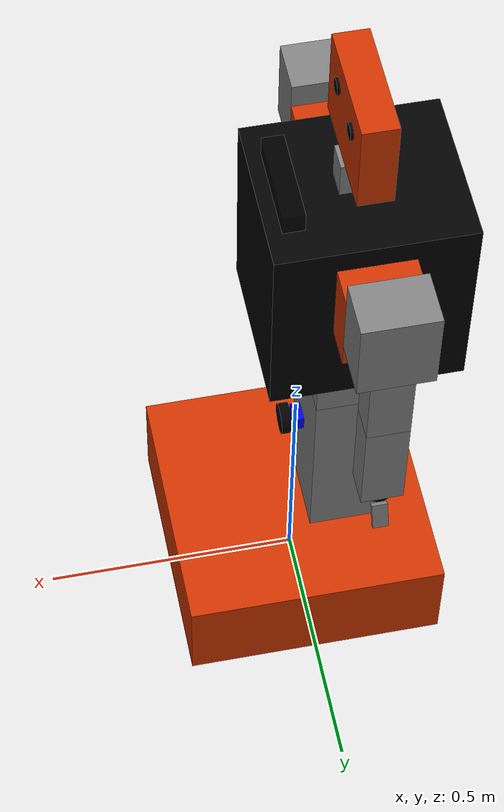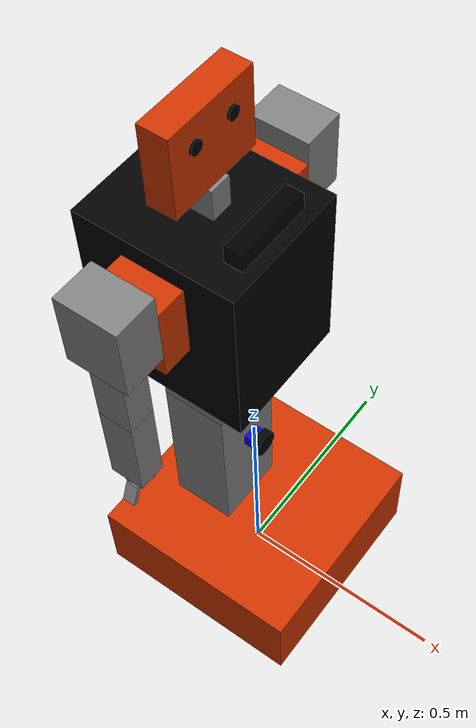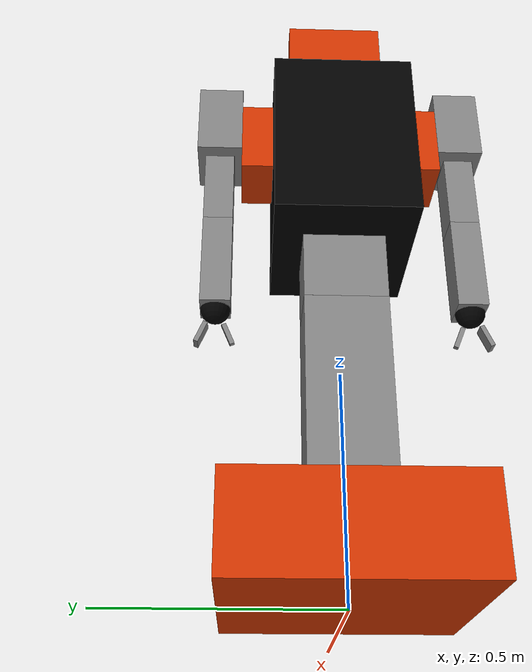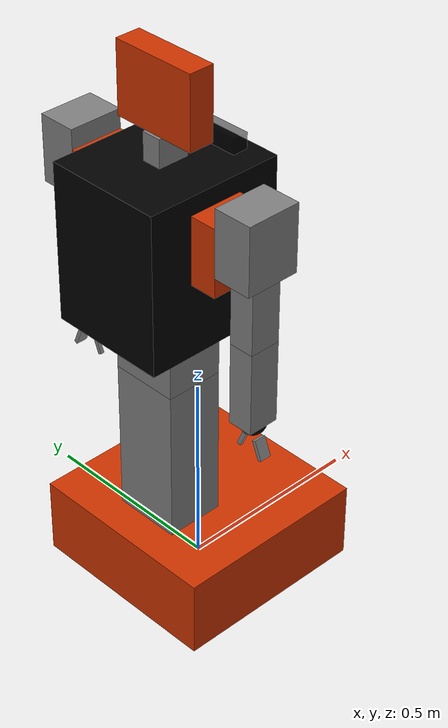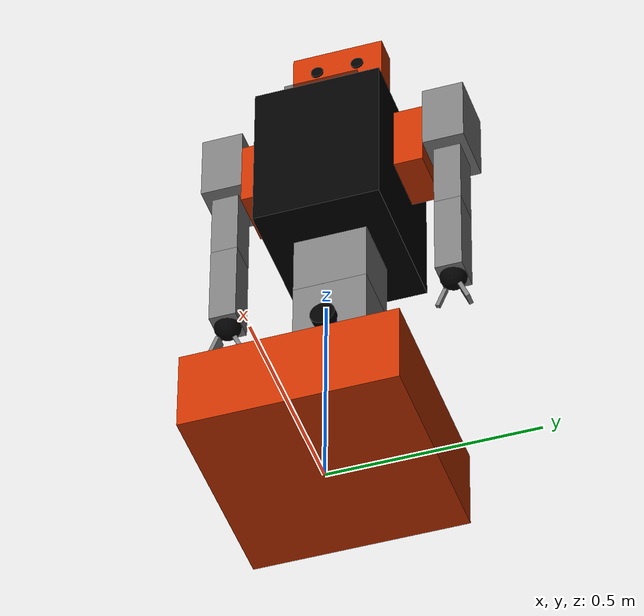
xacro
<?xml version="1.0" ?>
<!-- |    This document was autogenerated by xacro from /home/jacob/Documents/TangerineModel.urdf.xacro | -->
<!-- |    EDITING THIS FILE BY HAND IS NOT RECOMMENDED                                 | -->
<robot name="tangerige" xmlns:xacro="http://www.ros.org/wiki/xacro">
  <!-- .......................MACROS.................... -->
  <!-- ....................... END MACROS.................... -->
  <!-- ................BASE................. -->
  <link name="root_frame_dummy">
    <visual>
      <geometry>
	<box size="0 0 0"/>
      </geometry>
    </visual>
    <inertial>
      <mass value=".001"/>
      <inertia ixx="1.0" ixy="0.0" ixz="0.0" iyy="1.0" iyz="0.0" izz="1.0"/>
    </inertial>
    <origin xyz="0 0 0"/>
  </link>
  <joint name="root_frame_to_base_torso" type="planar">
    <parent link="root_frame_dummy"/>
    <child link="base_link_robot"/>
    <origin xyz="0 0 0.1"/>
  </joint>
  <link name="base_link_robot">
    <visual>
      <geometry>
        <box size="0.51 0.51 0.2"/>
      </geometry>
      <material name="orange">
        <color rgba=".8 .2 0 1"/>
      </material>
    </visual>
    <collision>
      <geometry>
        <cylinder length="0.2" radius="0.31"/>
      </geometry>
    </collision>
    <inertial>
      <mass value="10"/>
      <inertia ixx="1.0" ixy="0.0" ixz="0.0" iyy="1.0" iyz="0.0" izz="1.0"/>
    </inertial>
    <origin xyz="0 0 0"/>
    <dynamics damping="0.7" friction="1000.0"/>
  </link>
  <gazebo reference="base_link">
    <material>Gazebo/Red</material>
  </gazebo>
  <joint name="base_link_to_torso" type="fixed">
    <axis xyz="1 0 0"/>
    <limit effort="1000.0" lower="0" upper="0" velocity="0"/>
    <parent link="base_link_robot"/>
    <child link="base_torso"/>
    <origin xyz="-0.093 0 0.3"/>
  </joint>
  <link name="base_torso">
    <visual>
      <geometry>
        <box size="0.176 0.15 0.4"/>
      </geometry>
      <material name="grey">
        <color rgba="0.5 0.5 0.5 1"/>
      </material>
      <origin rpy="0 0 1.57075"/>
    </visual>
    <collision>
      <geometry>
        <cylinder length="0.55" radius="0.13"/>
      </geometry>
    </collision>
    <inertial>
      <mass value="6"/>
      <inertia ixx="1.0" ixy="0.0" ixz="0.0" iyy="1.0" iyz="0.0" izz="1.0"/>
    </inertial>
    <dynamics damping="0.7" friction="1000.0"/>
  </link>
  <gazebo reference="base_torso">
    <material>Gazebo/Red</material>
  </gazebo>
  <link name="upper_base_torso">
    <visual>
      <geometry>
        <box size="0.176 0.15 0.15"/>
      </geometry>
      <material name="grey"/>
    </visual>
    <collision>
      <geometry>
        <cylinder length="0.55" radius="0.13"/>
      </geometry>
    </collision>
    <inertial>
      <mass value="6"/>
      <inertia ixx="1.0" ixy="0.0" ixz="0.0" iyy="1.0" iyz="0.0" izz="1.0"/>
    </inertial>
    <dynamics damping="0.7" friction="1000.0"/>
  </link>
  <gazebo reference="upper_base_torso">
    <material>Gazebo/Gray</material>
  </gazebo>
  <joint name="torso_to_upper_base" type="revolute">
    <axis xyz="1 0 0"/>
    <limit effort="1000.0" lower="0" upper="0" velocity="0"/>
    <parent link="base_torso"/>
    <child link="upper_base_torso"/>
    <origin rpy="0 0 -1.57075" xyz="0 0 0.275"/>
  </joint>
  <link name="superior_link">
    <visual>
      <geometry>
        <box size="0.305 0.360 0.4"/>
      </geometry>
      <material name="black">
        <color rgba="0 0 0 1"/>
      </material>
    </visual>
    <collision>
      <geometry>
        <cylinder length="0.4" radius="0.22"/>
      </geometry>
    </collision>
    <inertial>
      <mass value="8"/>
      <inertia ixx="1.0" ixy="0.0" ixz="0.0" iyy="1.0" iyz="0.0" izz="1.0"/>
    </inertial>
    <dynamics damping="0.7" friction="1000.0"/>
  </link>
  <gazebo reference="superior_link">
    <material>Gazebo/Black</material>
  </gazebo>
  <joint name="upper_base_to_superior_link" type="revolute">
    <axis xyz="1 0 0"/>
    <limit effort="1000.0" lower="0" upper="0" velocity="0"/>
    <parent link="upper_base_torso"/>
    <child link="superior_link"/>
    <origin xyz="0 0 0.275"/>
  </joint>
  <link name="skeleton/openni_depth_frame">
    <visual>
      <geometry>
        <box size="0.04 0.18 0.04"/>
      </geometry>
      <material name="grey">
        <color rgba="0 0 0 0.5"/>
      </material>
    </visual>
    <collision>
      <geometry>
        <cylinder length="0.01" radius="0.01"/>
      </geometry>
    </collision>
    <inertial>
      <mass value="0.01"/>
      <inertia ixx="1.0" ixy="0.0" ixz="0.0" iyy="1.0" iyz="0.0" izz="1.0"/>
    </inertial>
    <dynamics damping="0.7" friction="1000.0"/>
  </link>
  <joint name="superior_link_to_openni_depth_frame" type="revolute">
    <axis xyz="1 0 0"/>
    <limit effort="1000.0" lower="0" upper="0" velocity="0"/>
    <parent link="superior_link"/>
    <child link="skeleton/openni_depth_frame"/>
    <origin rpy="0 0 1.57075" xyz="0 0.1325 0.22"/>
  </joint>
  <!-- ................END BASE................. -->
  <!-- ................HEAD................. -->
  <link name="neck_link">
    <visual>
      <geometry>
        <box size="0.05 0.08 0.07"/>
      </geometry>
      <material name="grey"/>
    </visual>
    <collision>
      <geometry>
        <cylinder length="0.07" radius="0.036"/>
      </geometry>
    </collision>
    <inertial>
      <mass value="0.5"/>
      <inertia ixx="1.0" ixy="0.0" ixz="0.0" iyy="1.0" iyz="0.0" izz="1.0"/>
    </inertial>
    <dynamics damping="0.7" friction="1000.0"/>
  </link>
  <gazebo reference="neck_link">
    <material>Gazebo/Red</material>
  </gazebo>
  <joint name="superior_to_neck_link" type="revolute">
    <axis xyz="1 0 0"/>
    <limit effort="1000.0" lower="0" upper="0" velocity="0"/>
    <parent link="superior_link"/>
    <child link="neck_link"/>
    <origin xyz="0 0 0.235"/>
  </joint>
  <link name="neck_z_revolute">
    <collision>
      <geometry>
        <cylinder length="0.01" radius="0.01"/>
      </geometry>
    </collision>
    <inertial>
      <mass value="0.01"/>
      <inertia ixx="1.0" ixy="0.0" ixz="0.0" iyy="1.0" iyz="0.0" izz="1.0"/>
    </inertial>
    <dynamics damping="0.7" friction="1000.0"/>
  </link>
  <joint name="neck_to_z_revolute" type="revolute">
    <axis xyz="0 0 1"/>
    <limit effort="1000.0" lower="-0.7853" upper="0.7853" velocity="5"/>
    <parent link="neck_link"/>
    <child link="neck_z_revolute"/>
  </joint>
  <link name="neck_x_revolute">
    <collision>
      <geometry>
        <cylinder length="0.01" radius="0.01"/>
      </geometry>
    </collision>
    <inertial>
      <mass value="0.01"/>
      <inertia ixx="1.0" ixy="0.0" ixz="0.0" iyy="1.0" iyz="0.0" izz="1.0"/>
    </inertial>
    <dynamics damping="0.7" friction="1000.0"/>
  </link>
  <joint name="z_revolute_to_x_revolute" type="revolute">
    <axis xyz="1 0 0"/>
    <limit effort="1000.0" lower="-0.3926" upper="0.3926" velocity="5"/>
    <parent link="neck_z_revolute"/>
    <child link="neck_x_revolute"/>
  </joint>
  <link name="head">
    <visual>
      <geometry>
        <box size="0.222 0.065 0.18"/>
      </geometry>
      <material name="orange"/>
    </visual>
    <collision>
      <geometry>
        <cylinder length="0.18" radius="0.16"/>
      </geometry>
    </collision>
    <inertial>
      <mass value="4"/>
      <inertia ixx="1.0" ixy="0.0" ixz="0.0" iyy="1.0" iyz="0.0" izz="1.0"/>
    </inertial>
    <dynamics damping="0.7" friction="1000.0"/>
  </link>
  <gazebo reference="head">
    <material>Gazebo/Red</material>
  </gazebo>
  <joint name="revolute_head" type="revolute">
    <axis xyz="1 0 0"/>
    <limit effort="1000.0" lower="0" upper="0" velocity="0"/>
    <parent link="neck_x_revolute"/>
    <child link="head"/>
    <origin xyz="0 0 0.125"/>
  </joint>
  <link name="right_eye">
    <visual>
      <geometry>
        <cylinder length="0.015" radius="0.015"/>
      </geometry>
      <material name="black"/>
      <origin rpy="-1.57075 0 0"/>
    </visual>
    <collision>
      <geometry>
        <cylinder length="0.03" radius="0.01"/>
      </geometry>
    </collision>
    <inertial>
      <mass value="0.2"/>
      <inertia ixx="1.0" ixy="0.0" ixz="0.0" iyy="1.0" iyz="0.0" izz="1.0"/>
    </inertial>
    <dynamics damping="0.7" friction="1000.0"/>
  </link>
  <joint name="right_eye_to_head" type="revolute">
    <axis xyz="1 0 0"/>
    <limit effort="1000.0" lower="0" upper="0" velocity="0"/>
    <parent link="head"/>
    <child link="right_eye"/>
    <origin xyz="0.05 0.03 0.03"/>
  </joint>
  <link name="left_eye">
    <visual>
      <geometry>
        <cylinder length="0.015" radius="0.015"/>
      </geometry>
      <material name="black"/>
      <origin rpy="-1.57075 0 0"/>
    </visual>
    <collision>
      <geometry>
        <cylinder length="0.03" radius="0.01"/>
      </geometry>
    </collision>
    <inertial>
      <mass value="0.2"/>
      <inertia ixx="1.0" ixy="0.0" ixz="0.0" iyy="1.0" iyz="0.0" izz="1.0"/>
    </inertial>
    <dynamics damping="0.7" friction="1000.0"/>
  </link>
  <joint name="left_eye_to_head" type="revolute">
    <axis xyz="1 0 0"/>
    <limit effort="1000.0" lower="0" upper="0" velocity="0"/>
    <parent link="head"/>
    <child link="left_eye"/>
    <origin xyz="-0.05 0.03 0.03"/>
  </joint>
  <!-- ................END HEAD................. -->
  <!-- ................RIGHT ARM................. -->
  <link name="right_shoulder_link">
    <visual>
      <geometry>
        <box size="0.07 0.14 0.17"/>
      </geometry>
      <material name="orange"/>
    </visual>
    <collision>
      <geometry>
        <cylinder length="0.23" radius="0.13"/>
      </geometry>
    </collision>
    <inertial>
      <mass value="2"/>
      <inertia ixx="1.0" ixy="0.0" ixz="0.0" iyy="1.0" iyz="0.0" izz="1.0"/>
    </inertial>
    <dynamics damping="0.7" friction="1000.0"/>
  </link>
  <gazebo reference="right_shoulder_link">
    <material>Gazebo/Gray</material>
  </gazebo>
  <joint name="superior_link_to_right_shoulder_link" type="revolute">
    <axis xyz="1 0 0"/>
    <limit effort="1000.0" lower="-0.785375" upper="1.57075" velocity="5"/>
    <parent link="superior_link"/>
    <child link="right_shoulder_link"/>
    <origin xyz="0.1875 0 0.07"/>
  </joint>
  <link name="right_shoulder">
    <visual>
      <geometry>
        <box size="0.10 0.14 0.17"/>
      </geometry>
      <material name="grey"/>
    </visual>
    <collision>
      <geometry>
        <cylinder length="0.23" radius="0.13"/>
      </geometry>
    </collision>
    <inertial>
      <mass value="2"/>
      <inertia ixx="1.0" ixy="0.0" ixz="0.0" iyy="1.0" iyz="0.0" izz="1.0"/>
    </inertial>
    <dynamics damping="0.7" friction="1000.0"/>
  </link>
  <gazebo reference="right_shoulder">
    <material>Gazebo/Gray</material>
  </gazebo>
  <joint name="right_shoulder_x_revolute" type="revolute">
    <axis xyz="1 0 0"/>
    <limit effort="1000.0" lower="-0.785375" upper="1.57075" velocity="5"/>
    <parent link="superior_link"/>
    <child link="right_shoulder"/>
    <origin xyz="0.2725 0 0.12"/>
  </joint>
  <link name="upper_right_arm_z_revolute">
    <collision>
      <geometry>
        <cylinder length="0.01" radius="0.01"/>
      </geometry>
    </collision>
    <inertial>
      <mass value="0.01"/>
      <inertia ixx="1.0" ixy="0.0" ixz="0.0" iyy="1.0" iyz="0.0" izz="1.0"/>
    </inertial>
    <dynamics damping="0.7" friction="1000.0"/>
  </link>
  <joint name="upper_right_arm_z_revolute" type="revolute">
    <axis xyz="0 0 1"/>
    <limit effort="1000.0" lower="-0.7" upper="0.7" velocity="5"/>
    <parent link="right_shoulder"/>
    <child link="upper_right_arm_z_revolute"/>
    <origin xyz="0 0 0"/>
  </joint>
  <link name="upper_right_arm_y_revolute">
    <collision>
      <geometry>
        <cylinder length="0.01" radius="0.01"/>
      </geometry>
    </collision>
    <inertial>
      <mass value="0.01"/>
      <inertia ixx="1.0" ixy="0.0" ixz="0.0" iyy="1.0" iyz="0.0" izz="1.0"/>
    </inertial>
    <dynamics damping="0.7" friction="1000.0"/>
  </link>
  <joint name="upper_right_arm_y_revolute" type="revolute">
    <axis xyz="0 1 0"/>
    <limit effort="1000.0" lower="-.4" upper="0" velocity="5"/>
    <parent link="upper_right_arm_z_revolute"/>
    <child link="upper_right_arm_y_revolute"/>
    <origin xyz="0 0 0"/>
  </joint>
  <link name="upper_right_arm">
    <visual>
      <geometry>
        <box size="0.065 0.08 0.17"/>
      </geometry>
      <material name="grey"/>
    </visual>
    <collision>
      <geometry>
        <cylinder length="0.17" radius="0.046"/>
      </geometry>
    </collision>
    <inertial>
      <mass value="3"/>
      <inertia ixx="1.0" ixy="0.0" ixz="0.0" iyy="1.0" iyz="0.0" izz="1.0"/>
    </inertial>
    <dynamics damping="0.7" friction="1000.0"/>
  </link>
  <gazebo reference="upper_right_arm">
    <material>Gazebo/Gray</material>
  </gazebo>
  <joint name="shoulder_to_upper_right_arm" type="fixed">
    <parent link="upper_right_arm_y_revolute"/>
    <child link="upper_right_arm"/>
    <origin xyz="0 0 -0.17"/>
  </joint>
  <joint name="upper_to_lower_right_joint" type="revolute">
    <axis xyz="1 0 0"/>
    <limit effort="1000.0" lower="0" upper="1.5706" velocity="5"/>
    <parent link="upper_right_arm"/>
    <child link="lower_right_arm_y_revolute"/>
    <origin xyz="0 0 -.085"/>
  </joint>
  <link name="lower_right_arm_y_revolute">
    <collision>
      <geometry>
        <cylinder length="0.01" radius="0.01"/>
      </geometry>
    </collision>
    <inertial>
      <mass value="0.01"/>
      <inertia ixx="1.0" ixy="0.0" ixz="0.0" iyy="1.0" iyz="0.0" izz="1.0"/>
    </inertial>
    <origin xyz="0 0 0"/>
    <dynamics damping="0.7" friction="1000.0"/>
  </link>
  <joint name="lower_right_joint_to_lower_arm" type="fixed">
    <parent link="lower_right_arm_y_revolute"/>
    <child link="lower_right_arm"/>
    <origin xyz="0 0 -.105"/>
  </joint>
  <link name="lower_right_arm">
    <visual>
      <geometry>
        <box size="0.065 0.08 0.21"/>
      </geometry>
      <material name="grey"/>
    </visual>
    <collision>
      <geometry>
        <cylinder length="0.21" radius="0.046"/>
      </geometry>
    </collision>
    <inertial>
      <mass value="0.5"/>
      <inertia ixx="1.0" ixy="0.0" ixz="0.0" iyy="1.0" iyz="0.0" izz="1.0"/>
    </inertial>
    <dynamics damping="0.7" friction="1000.0"/>
  </link>
  <gazebo reference="lower_right_arm">
    <material>Gazebo/Gray</material>
  </gazebo>
  <link name="wrist_right_arm_z_revolute">
    <collision>
      <geometry>
        <cylinder length="0.01" radius="0.01"/>
      </geometry>
    </collision>
    <inertial>
      <mass value="0.01"/>
      <inertia ixx="1.0" ixy="0.0" ixz="0.0" iyy="1.0" iyz="0.0" izz="1.0"/>
    </inertial>
    <dynamics damping="0.7" friction="1000.0"/>
  </link>
  <joint name="wrist_right_arm_z_revolute" type="revolute">
    <axis xyz="0 0 1"/>
    <limit effort="1000.0" lower="-2" upper="2" velocity="5"/>
    <parent link="lower_right_arm"/>
    <child link="wrist_right_arm_z_revolute"/>
  </joint>
  <link name="wrist_right_arm_x_revolute">
    <collision>
      <geometry>
        <cylinder length="0.01" radius="0.01"/>
      </geometry>
    </collision>
    <inertial>
      <mass value="0.01"/>
      <inertia ixx="1.0" ixy="0.0" ixz="0.0" iyy="1.0" iyz="0.0" izz="1.0"/>
    </inertial>
    <dynamics damping="0.7" friction="1000.0"/>
  </link>
  <joint name="wrist_right_arm_x_revolute" type="fixed">
    <parent link="wrist_right_arm_z_revolute"/>
    <child link="wrist_right_arm_x_revolute"/>
  </joint>
  <link name="wrist_right_arm">
    <visual>
      <geometry>
        <sphere radius="0.0325"/>
      </geometry>
      <material name="black"/>
    </visual>
    <collision>
      <geometry>
        <cylinder length="0.0325" radius="0.0325"/>
      </geometry>
    </collision>
    <inertial>
      <mass value="1"/>
      <inertia ixx="1.0" ixy="0.0" ixz="0.0" iyy="1.0" iyz="0.0" izz="1.0"/>
    </inertial>
    <dynamics damping="0.7" friction="1000.0"/>
  </link>
  <gazebo reference="wrist_right_arm">
    <material>Gazebo/Black</material>
  </gazebo>
  <joint name="lower_to_wrist_right_arm" type="revolute">
    <axis xyz="1 0 0"/>
    <limit effort="1000.0" lower="-1.047" upper="1.047" velocity="5"/>
    <parent link="wrist_right_arm_x_revolute"/>
    <child link="wrist_right_arm"/>
    <origin xyz="0 0 -0.105"/>
  </joint>
  <link name="finger1_right_arm">
    <visual>
      <geometry>
        <box size="0.01 0.01 0.05"/>
      </geometry>
      <origin xyz="0 0 -0.025"/>
      <material name="grey"/>
    </visual>
    <collision>
      <geometry>
        <cylinder length="0.05" radius="0.005"/>
      </geometry>
    </collision>
    <inertial>
      <mass value="0.2"/>
      <inertia ixx="1.0" ixy="0.0" ixz="0.0" iyy="1.0" iyz="0.0" izz="1.0"/>
    </inertial>
    <dynamics damping="0.7" friction="1000.0"/>
  </link>
  <gazebo reference="finger1_right_arm">
    <material>Gazebo/Gray</material>
  </gazebo>
  <joint name="wrist_to_finger1_right_arm" type="revolute">
    <axis xyz="0 1 0"/>
    <limit effort="1000.0" lower="0" upper="-0.68" velocity="5"/>
    <parent link="wrist_right_arm"/>
    <child link="finger1_right_arm"/>
    <origin rpy="0 0.3926875 0" xyz="-0.01875 0 -0.0375"/>
  </joint>
  <link name="finger2_right_arm">
    <visual>
      <geometry>
        <box size="0.01 0.03 0.05"/>
      </geometry>
      <origin xyz="0 0 -0.025"/>
      <material name="grey"/>
    </visual>
    <collision>
      <geometry>
        <cylinder length="0.05" radius="0.005"/>
      </geometry>
    </collision>
    <inertial>
      <mass value="0.2"/>
      <inertia ixx="1.0" ixy="0.0" ixz="0.0" iyy="1.0" iyz="0.0" izz="1.0"/>
    </inertial>
    <dynamics damping="0.7" friction="1000.0"/>
  </link>
  <gazebo reference="finger2_right_arm">
    <material>Gazebo/Gray</material>
  </gazebo>
  <joint name="wrist_to_finger2_right_arm" type="revolute">
    <axis xyz="0 1 0"/>
    <limit effort="1000.0" lower="0.68" upper="0" velocity="5"/>
    <parent link="wrist_right_arm"/>
    <child link="finger2_right_arm"/>
    <origin rpy="0 -0.3926875 0" xyz="0.01875 0 -0.0375"/>
  </joint>
  <!-- ................END RIGHT ARM................. -->
  <!-- ................LEFT ARM................. -->
  <link name="left_shoulder_link">
    <visual>
      <geometry>
        <box size="0.07 0.14 0.17"/>
      </geometry>
      <material name="orange"/>
    </visual>
    <collision>
      <geometry>
        <cylinder length="0.23" radius="0.13"/>
      </geometry>
    </collision>
    <inertial>
      <mass value="2"/>
      <inertia ixx="1.0" ixy="0.0" ixz="0.0" iyy="1.0" iyz="0.0" izz="1.0"/>
    </inertial>
    <dynamics damping="0.7" friction="1000.0"/>
  </link>
  <gazebo reference="left_shoulder_link">
    <material>Gazebo/Gray</material>
  </gazebo>
  <joint name="superior_link_to_left_shoulder_link" type="revolute">
    <axis xyz="1 0 0"/>
    <limit effort="1000.0" lower="-0.785375" upper="1.57075" velocity="5"/>
    <parent link="superior_link"/>
    <child link="left_shoulder_link"/>
    <origin xyz="-0.1875 0 0.07"/>
  </joint>
  <link name="left_shoulder">
    <visual>
      <geometry>
        <box size="0.10 0.14 0.17"/>
      </geometry>
      <material name="grey"/>
    </visual>
    <collision>
      <geometry>
        <cylinder length="0.23" radius="0.13"/>
      </geometry>
    </collision>
    <inertial>
      <mass value="2"/>
      <inertia ixx="1.0" ixy="0.0" ixz="0.0" iyy="1.0" iyz="0.0" izz="1.0"/>
    </inertial>
    <dynamics damping="0.7" friction="1000.0"/>
  </link>
  <gazebo reference="left_shoulder">
    <material>Gazebo/Gray</material>
  </gazebo>
  <joint name="left_shoulder_x_revolute" type="revolute">
    <axis xyz="1 0 0"/>
    <limit effort="1000.0" lower="-0.785375" upper="1.57075" velocity="5"/>
    <parent link="superior_link"/>
    <child link="left_shoulder"/>
    <origin xyz="-0.2725 0 0.12"/>
  </joint>
  <link name="upper_left_arm_z_revolute">
    <collision>
      <geometry>
        <cylinder length="0.01" radius="0.01"/>
      </geometry>
    </collision>
    <inertial>
      <mass value="0.01"/>
      <inertia ixx="1.0" ixy="0.0" ixz="0.0" iyy="1.0" iyz="0.0" izz="1.0"/>
    </inertial>
    <dynamics damping="0.7" friction="1000.0"/>
  </link>
  <joint name="upper_left_arm_z_revolute" type="revolute">
    <axis xyz="0 0 1"/>
    <limit effort="1000.0" lower="-0.7" upper="0.7" velocity="5"/>
    <parent link="left_shoulder"/>
    <child link="upper_left_arm_z_revolute"/>
    <origin xyz="0 0 0"/>
  </joint>
  <link name="upper_left_arm_y_revolute">
    <collision>
      <geometry>
        <cylinder length="0.01" radius="0.01"/>
      </geometry>
    </collision>
    <inertial>
      <mass value="0.01"/>
      <inertia ixx="1.0" ixy="0.0" ixz="0.0" iyy="1.0" iyz="0.0" izz="1.0"/>
    </inertial>
    <origin xyz="0 0 0"/>
    <dynamics damping="0.7" friction="1000.0"/>
  </link>
  <joint name="upper_left_arm_y_revolute" type="revolute">
    <axis xyz="0 1 0"/>
    <limit effort="1000.0" lower="0" upper="0.4" velocity="5"/>
    <parent link="upper_left_arm_z_revolute"/>
    <child link="upper_left_arm_y_revolute"/>
    <origin xyz="0 0 0"/>
  </joint>
  <link name="upper_left_arm">
    <visual>
      <geometry>
        <box size="0.065 0.08 0.17"/>
      </geometry>
      <material name="grey"/>
    </visual>
    <collision>
      <geometry>
        <cylinder length="0.17" radius="0.046"/>
      </geometry>
    </collision>
    <inertial>
      <mass value="0.5"/>
      <inertia ixx="1.0" ixy="0.0" ixz="0.0" iyy="1.0" iyz="0.0" izz="1.0"/>
    </inertial>
    <dynamics damping="0.7" friction="1000.0"/>
  </link>
  <gazebo reference="upper_left_arm">
    <material>Gazebo/Gray</material>
  </gazebo>
  <joint name="shoulder_to_upper_left_arm" type="fixed">
    <parent link="upper_left_arm_y_revolute"/>
    <child link="upper_left_arm"/>
    <origin xyz="0 0 -0.17"/>
  </joint>
  <joint name="upper_to_lower_left_joint" type="revolute">
    <axis xyz="1 0 0"/>
    <limit effort="1000.0" lower="0" upper="1.5706" velocity="5"/>
    <parent link="upper_left_arm"/>
    <child link="lower_left_arm_y_revolute"/>
    <origin xyz="0 0 -.085"/>
  </joint>
  <link name="lower_left_arm_y_revolute">
    <collision>
      <geometry>
        <cylinder length="0.01" radius="0.01"/>
      </geometry>
    </collision>
    <inertial>
      <mass value="0.01"/>
      <inertia ixx="1.0" ixy="0.0" ixz="0.0" iyy="1.0" iyz="0.0" izz="1.0"/>
    </inertial>
    <origin xyz="0 0 0"/>
    <dynamics damping="0.7" friction="1000.0"/>
  </link>
  <joint name="lower_left_joint_to_lower_arm" type="fixed">
    <parent link="lower_left_arm_y_revolute"/>
    <child link="lower_left_arm"/>
    <origin xyz="0 0 -.105"/>
  </joint>
  <link name="lower_left_arm">
    <visual>
      <geometry>
        <box size="0.065 0.08 0.21"/>
      </geometry>
      <material name="grey"/>
    </visual>
    <collision>
      <geometry>
        <cylinder length="0.21" radius="0.046"/>
      </geometry>
    </collision>
    <inertial>
      <mass value="3"/>
      <inertia ixx="1.0" ixy="0.0" ixz="0.0" iyy="1.0" iyz="0.0" izz="1.0"/>
    </inertial>
    <dynamics damping="0.7" friction="1000.0"/>
  </link>
  <gazebo reference="lower_left_arm">
    <material>Gazebo/Gray</material>
  </gazebo>
  <link name="wrist_left_arm_z_revolute">
    <collision>
      <geometry>
        <cylinder length="0.01" radius="0.01"/>
      </geometry>
    </collision>
    <inertial>
      <mass value="0.01"/>
      <inertia ixx="1.0" ixy="0.0" ixz="0.0" iyy="1.0" iyz="0.0" izz="1.0"/>
    </inertial>
    <dynamics damping="0.7" friction="1000.0"/>
  </link>
  <joint name="wrist_left_arm_z_revolute" type="revolute">
    <axis xyz="0 0 1"/>
    <limit effort="1000.0" lower="-2" upper="2" velocity="5"/>
    <parent link="lower_left_arm"/>
    <child link="wrist_left_arm_z_revolute"/>
  </joint>
  <link name="wrist_left_arm_x_revolute">
    <collision>
      <geometry>
        <cylinder length="0.01" radius="0.01"/>
      </geometry>
    </collision>
    <inertial>
      <mass value="0.01"/>
      <inertia ixx="1.0" ixy="0.0" ixz="0.0" iyy="1.0" iyz="0.0" izz="1.0"/>
    </inertial>
    <dynamics damping="0.7" friction="1000.0"/>
  </link>
  <joint name="wrist_left_arm_x_revolute" type="fixed">
    <parent link="wrist_left_arm_z_revolute"/>
    <child link="wrist_left_arm_x_revolute"/>
  </joint>
  <link name="wrist_left_arm">
    <visual>
      <geometry>
        <sphere radius="0.0325"/>
      </geometry>
      <material name="black"/>
    </visual>
    <collision>
      <geometry>
        <cylinder length="0.075" radius="0.0375"/>
      </geometry>
    </collision>
    <inertial>
      <mass value="1"/>
      <inertia ixx="1.0" ixy="0.0" ixz="0.0" iyy="1.0" iyz="0.0" izz="1.0"/>
    </inertial>
    <dynamics damping="0.7" friction="1000.0"/>
  </link>
  <gazebo reference="wrist_left_arm">
    <material>Gazebo/Black</material>
  </gazebo>
  <joint name="lower_to_wrist_left_arm" type="revolute">
    <axis xyz="1 0 0"/>
    <limit effort="1000.0" lower="-1.047" upper="1.047" velocity="5"/>
    <parent link="wrist_left_arm_x_revolute"/>
    <child link="wrist_left_arm"/>
    <origin xyz="0 0 -0.105"/>
  </joint>
  <link name="finger1_left_arm">
    <visual>
      <geometry>
        <box size="0.01 0.01 0.05"/>
      </geometry>
      <origin xyz="0 0 -0.025"/>
      <material name="grey"/>
    </visual>
    <collision>
      <geometry>
        <cylinder length="0.05" radius="0.005"/>
      </geometry>
    </collision>
    <inertial>
      <mass value="0.2"/>
      <inertia ixx="1.0" ixy="0.0" ixz="0.0" iyy="1.0" iyz="0.0" izz="1.0"/>
    </inertial>
    <dynamics damping="0.7" friction="1000.0"/>
  </link>
  <gazebo reference="finger1_left_arm">
    <material>Gazebo/Gray</material>
  </gazebo>
  <joint name="wrist_to_finger1_left_arm" type="revolute">
    <axis xyz="0 1 0"/>
    <limit effort="1000.0" lower="0.68" upper="0" velocity="5"/>
    <parent link="wrist_left_arm"/>
    <child link="finger1_left_arm"/>
    <origin rpy="0 -0.3926875 0" xyz="0.01875 0 -0.0375"/>
  </joint>
  <link name="finger2_left_arm">
    <visual>
      <geometry>
        <box size="0.01 0.03 0.05"/>
      </geometry>
      <origin xyz="0 0 -0.025"/>
      <material name="grey"/>
    </visual>
    <collision>
      <geometry>
        <cylinder length="0.05" radius="0.005"/>
      </geometry>
    </collision>
    <inertial>
      <mass value="0.2"/>
      <inertia ixx="1.0" ixy="0.0" ixz="0.0" iyy="1.0" iyz="0.0" izz="1.0"/>
    </inertial>
    <dynamics damping="0.7" friction="1000.0"/>
  </link>
  <gazebo reference="finger2_left_arm">
    <material>Gazebo/Gray</material>
  </gazebo>
  <joint name="wrist_to_finger2_left_arm" type="revolute">
    <axis xyz="0 1 0"/>
    <limit effort="1000.0" lower="0" upper="-0.68" velocity="5"/>
    <parent link="wrist_left_arm"/>
    <child link="finger2_left_arm"/>
    <origin rpy="0 0.3926875 0" xyz="-0.01875 0 -0.0375"/>
  </joint>
  <!-- ................END LEFT ARM................. -->
  <!-- ................SENSORS...................... -->
  <link name="laser_base">
    <visual>
      <geometry>
        <box size="0.02 0.03 0.04"/>
      </geometry>
      <material name="blue">
        <color rgba="0 0 1 .9"/>
      </material>
    </visual>
    <collision>
      <geometry>
        <cylinder length="0.001" radius="0.0001"/>
      </geometry>
    </collision>
    <inertial>
      <mass value=".001"/>
      <inertia ixx="1.0" ixy="0.0" ixz="0.0" iyy="1.0" iyz="0.0" izz="1.0"/>
    </inertial>
  </link>
  <joint name="laser_base_to_torso" type="fixed">
    <parent link="base_torso"/>
    <child link="laser_base"/>
    <origin rpy="1.5708 0 0" xyz="0.09 0 .06"/>
  </joint>
  <link name="laser_joint">
    <collision>
      <geometry>
        <cylinder length="0.005" radius="0.003"/>
      </geometry>
    </collision>
    <inertial>
      <mass value="0.01"/>
      <inertia ixx="1.0" ixy="0.0" ixz="0.0" iyy="1.0" iyz="0.0" izz="1.0"/>
    </inertial>
    <dynamics damping="0.7" friction="1000.0"/>
  </link>
  <joint name="laser_joint_to_base" type="revolute">
    <axis xyz="0 0 1"/>
    <limit effort="1000.0" lower="-.77" upper=".77" velocity="5"/>
    <parent link="laser_base"/>
    <child link="laser_joint"/>
    <origin rpy="0 0 0" xyz="0.025 0 0"/>
  </joint>
  <link name="base_laser">
    <visual>
      <geometry>
        <cylinder length="0.02" radius="0.03"/>
      </geometry>
      <material name="black">
        <color rgba="0 0 0 1"/>
      </material>
    </visual>
    <inertial>
      <mass value=".001"/>
      <inertia ixx="1.0" ixy="0.0" ixz="0.0" iyy="1.0" iyz="0.0" izz="1.0"/>
    </inertial>
  </link>
  <joint name="laser_sensor_to_joint" type="fixed">
    <parent link="laser_joint"/>
    <child link="base_laser"/>
    <origin rpy="0 1.5707 0" xyz="0 0 0"/>
  </joint>

  <!-- ................END SENSORS.................. -->
</robot>
